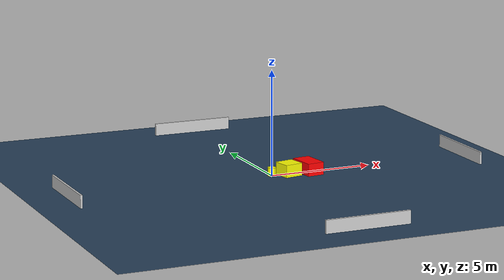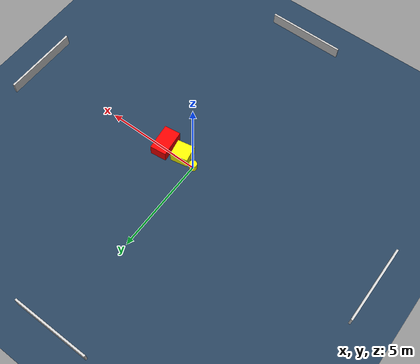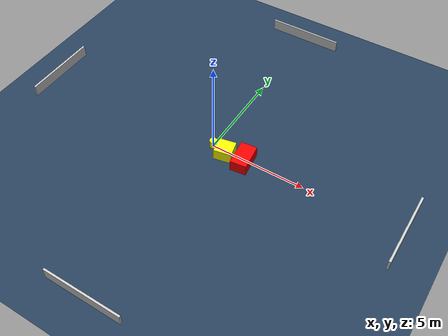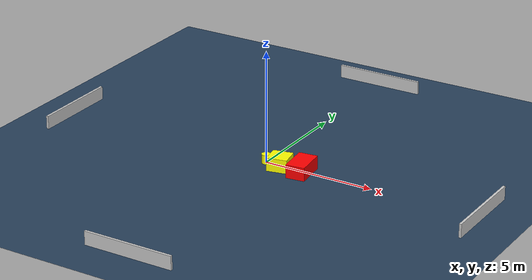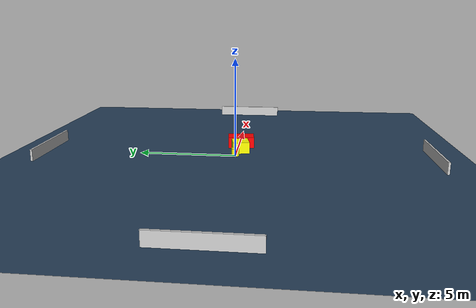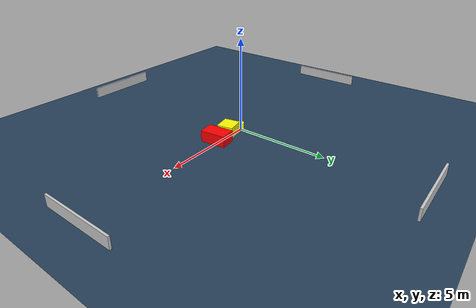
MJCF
<?xml version="1.0" ?>
<mujoco model="generated_environment">
  <option timestep="0.01" integrator="RK4" cone="elliptic"/>
  <default>
    <geom density="1"/>
  </default>
  <asset>
    <texture builtin="gradient" height="3072" name="skybox" rgb1="0.3 0.5 0.7" rgb2="0 0 0" type="skybox" width="512"/>
    <texture builtin="checker" height="300" name="groundplane" rgb1="0.2 0.3 0.4" rgb2="0.1 0.2 0.3" type="2d" width="300"/>
    <material name="groundplane" reflectance="0.2" texrepeat="5 5" texture="groundplane"/>
  </asset>
  <worldbody>
    <light dir="0 0 -1" directional="true" pos="0 0 1.5"/>
    <geom condim="3" friction="0.5 0.005 0.001" material="groundplane" name="floor" pos="0 0 0" size="0 0 0.05" type="plane"/>
    <body name="walls">
      <geom name="wall_1" condim="4" pos="-10.0 0.0 0.3" rgba="0.800000011920929 0.800000011920929 0.800000011920929 1.0" size="0.05 2.0 0.3" type="box"/>
      <geom name="wall_2" condim="4" pos="10.0 0.0 0.3" rgba="0.800000011920929 0.800000011920929 0.800000011920929 1.0" size="0.05 2.0 0.3" type="box"/>
      <geom name="wall_3" condim="4" pos="0.0 -10.0 0.3" rgba="0.800000011920929 0.800000011920929 0.800000011920929 1.0" size="2.0 0.05 0.3" type="box"/>
      <geom name="wall_4" condim="4" pos="0.0 10.0 0.3" rgba="0.800000011920929 0.800000011920929 0.800000011920929 1.0" size="2.0 0.05 0.3" type="box"/>
    </body>
    <body name="robot">
      <joint name="joint_x" type="slide" pos="0 0 0" axis="1 0 0"/>
      <joint name="joint_y" type="slide" pos="0 0 0" axis="0 1 0"/>
      <geom name="robot" type="cylinder" pos="0.0 0.0 0.2" size="0.2 0.2 0.0" mass="5.0" friction="1.0 0.005 0.0001" condim="4" rgba="1.0 1.0 0.0 1.0"/>
    </body>
    <body name="obstacle_1_movable">
      <geom name="obstacle_1_movable" condim="4" pos="0.790433892466481 -0.1959918481910474 0.3" euler="0 0 11.046318754993303" friction="0.0 0.005 0.001" rgba="1.0 1.0 0.0 1.0" size="0.44814893031281855 0.42970674663197256 0.3" type="box" mass="0.1"/>
      <joint type="free"/>
    </body>
    <body name="obstacle_2_static">
      <geom name="obstacle_2_static" condim="4" pos="1.8091467710513263 -0.1440707881422831 0.3" euler="0 0 6.4298422942342315" friction="0.0 0.005 0.001" rgba="1.0 0.0 0.0 1.0" size="0.4191772264072115 0.6887650660337463 0.3" type="box"/>
    </body>
  </worldbody>
  <actuator>
    <motor name="actuator_x" joint="joint_x" gear="1" ctrlrange="-1 1"/>
    <motor name="actuator_y" joint="joint_y" gear="1" ctrlrange="-1 1"/>
  </actuator>
</mujoco>
